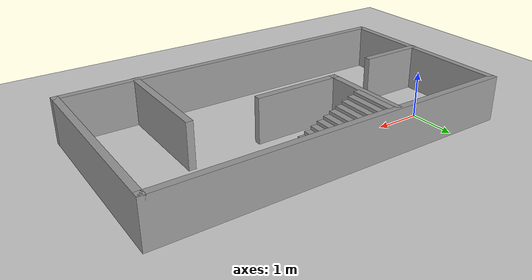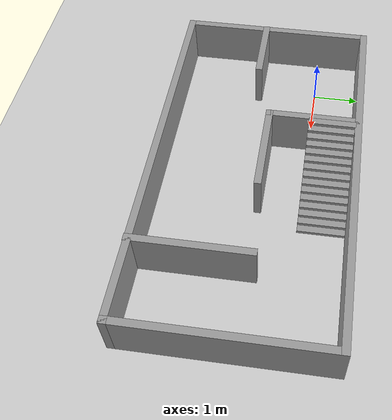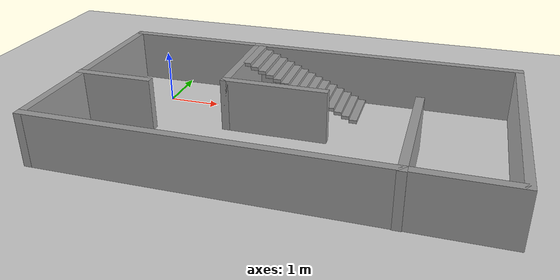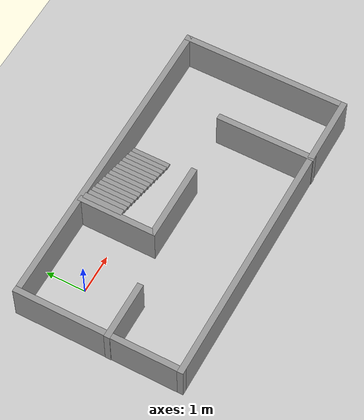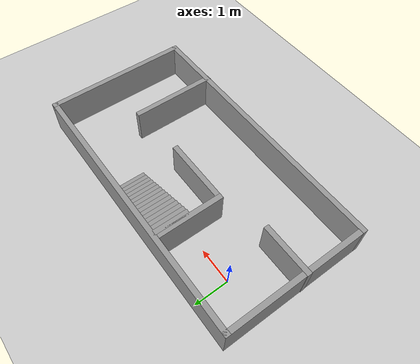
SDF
<sdf version="1.7">
 <world name="default">
  <light name="sun" type="directional">
   <pose>0 0 10 0 -0 0</pose>
   <diffuse>0.8 0.8 0.8 1</diffuse>
   <specular>0.2 0.2 0.2 1</specular>
   <attenuation>
    <range>1000</range>
    <constant>0.9</constant>
    <linear>0.01</linear>
    <quadratic>0.001</quadratic>
   </attenuation>
   <direction>-0.5 0.1 -0.9</direction>
   <spot><inner_angle>0</inner_angle><outer_angle>0</outer_angle><falloff>0</falloff></spot>
  </light>
  <model name="ground_plane">
   <static>1</static>
   <link name="link">
    <collision name="collision">
     <geometry><plane><normal>0 0 1</normal><size>100 100</size></plane></geometry>
     <surface>
      <contact><collide_bitmask>65535</collide_bitmask></contact>
      <friction><ode><mu>100</mu><mu2>50</mu2></ode></friction>
     </surface>
    </collision>
    <visual name="visual">
     <cast_shadows>0</cast_shadows>
     <geometry><plane><normal>0 0 1</normal><size>100 100</size></plane></geometry>
     <material>
      <script><uri>file://media/materials/scripts/gazebo.material</uri><name>Gazebo/Grey</name></script>
     </material>
    </visual>
   </link>
  </model>
  <gravity>0 0 -9.8</gravity>
  <magnetic_field>6e-06 2.3e-05 -4.2e-05</magnetic_field>
  <atmosphere type="adiabatic"/>
  <physics type="ode">
   <max_step_size>0.001</max_step_size>
   <real_time_factor>1</real_time_factor>
   <real_time_update_rate>1000</real_time_update_rate>
  </physics>
  <scene><ambient>0.4 0.4 0.4 1</ambient><background>0.7 0.7 0.7 1</background><shadows>1</shadows></scene>
  <audio><device>default</device></audio>
  <spherical_coordinates>
   <surface_model>EARTH_WGS84</surface_model>
   <latitude_deg>0</latitude_deg>
   <longitude_deg>0</longitude_deg>
   <elevation>0</elevation>
   <heading_deg>0</heading_deg>
  </spherical_coordinates>
  <model name="Untitled">
   <pose>2.78338 -0.25312 0 0 -0 0</pose>
   <link name="Wall_0">
    <collision name="Wall_0_Collision">
     <geometry><box><size>8 0.15 1</size></box></geometry>
     <pose>0 0 0.5 0 -0 0</pose>
    </collision>
    <visual name="Wall_0_Visual">
     <pose>0 0 0.5 0 -0 0</pose>
     <geometry><box><size>8 0.15 1</size></box></geometry>
     <material>
      <script><uri>file://media/materials/scripts/gazebo.material</uri><name>Gazebo/Grey</name></script>
      <ambient>1 1 1 1</ambient>
     </material>
     <meta><layer>0</layer></meta>
    </visual>
    <pose>0.0045 1.254 0 0 -0 0</pose>
   </link>
   <link name="Wall_1">
    <collision name="Wall_1_Collision">
     <geometry><box><size>4.25 0.15 1</size></box></geometry>
     <pose>0 0 0.5 0 -0 0</pose>
    </collision>
    <visual name="Wall_1_Visual">
     <pose>0 0 0.5 0 -0 0</pose>
     <geometry><box><size>4.25 0.15 1</size></box></geometry>
     <material>
      <script><uri>file://media/materials/scripts/gazebo.material</uri><name>Gazebo/Grey</name></script>
      <ambient>1 1 1 1</ambient>
     </material>
     <meta><layer>0</layer></meta>
    </visual>
    <pose>3.9295 -0.796 0 0 -0 -1.5708</pose>
   </link>
   <link name="Wall_10">
    <collision name="Wall_10_Collision">
     <geometry><box><size>1.5 0.15 1</size></box></geometry>
     <pose>0 0 0.5 0 -0 0</pose>
    </collision>
    <visual name="Wall_10_Visual">
     <pose>0 0 0.5 0 -0 0</pose>
     <geometry><box><size>1.5 0.15 1</size></box></geometry>
     <material>
      <script><uri>file://media/materials/scripts/gazebo.material</uri><name>Gazebo/Grey</name></script>
      <ambient>1 1 1 1</ambient>
     </material>
     <meta><layer>0</layer></meta>
    </visual>
    <pose>-3.2545 -1.049 0 0 -0 0</pose>
   </link>
   <link name="Wall_2">
    <collision name="Wall_2_Collision">
     <geometry><box><size>8 0.15 1</size></box></geometry>
     <pose>0 0 0.5 0 -0 0</pose>
    </collision>
    <visual name="Wall_2_Visual">
     <pose>0 0 0.5 0 -0 0</pose>
     <geometry><box><size>8 0.15 1</size></box></geometry>
     <material>
      <script><uri>file://media/materials/scripts/gazebo.material</uri><name>Gazebo/Grey</name></script>
      <ambient>1 1 1 1</ambient>
     </material>
     <meta><layer>0</layer></meta>
    </visual>
    <pose>0.0045 -2.846 0 0 -0 3.14159</pose>
   </link>
   <link name="Wall_3">
    <collision name="Wall_3_Collision">
     <geometry><box><size>4.25 0.15 1</size></box></geometry>
     <pose>0 0 0.5 0 -0 0</pose>
    </collision>
    <visual name="Wall_3_Visual">
     <pose>0 0 0.5 0 -0 0</pose>
     <geometry><box><size>4.25 0.15 1</size></box></geometry>
     <material>
      <script><uri>file://media/materials/scripts/gazebo.material</uri><name>Gazebo/Grey</name></script>
      <ambient>1 1 1 1</ambient>
     </material>
     <meta><layer>0</layer></meta>
    </visual>
    <pose>-3.9205 -0.796 0 0 -0 1.5708</pose>
   </link>
   <link name="Wall_5">
    <collision name="Wall_5_Collision">
     <geometry><box><size>2 0.15 1</size></box></geometry>
     <pose>0 0 0.5 0 -0 0</pose>
    </collision>
    <visual name="Wall_5_Visual">
     <pose>0 0 0.5 0 -0 0</pose>
     <geometry><box><size>2 0.15 1</size></box></geometry>
     <material>
      <script><uri>file://media/materials/scripts/gazebo.material</uri><name>Gazebo/Grey</name></script>
      <ambient>1 1 1 1</ambient>
     </material>
     <meta><layer>0</layer></meta>
    </visual>
    <pose>-1.2135 0.279 0 0 -0 -1.5708</pose>
   </link>
   <link name="Wall_6">
    <collision name="Wall_6_Collision">
     <geometry><box><size>2 0.15 1</size></box></geometry>
     <pose>0 0 0.5 0 -0 0</pose>
    </collision>
    <visual name="Wall_6_Visual">
     <pose>0 0 0.5 0 -0 0</pose>
     <geometry><box><size>2 0.15 1</size></box></geometry>
     <material>
      <script><uri>file://media/materials/scripts/gazebo.material</uri><name>Gazebo/Grey</name></script>
      <ambient>1 1 1 1</ambient>
     </material>
     <meta><layer>0</layer></meta>
    </visual>
    <pose>-0.2885 -0.646 0 0 -0 0</pose>
   </link>
   <link name="Wall_8">
    <collision name="Wall_8_Collision">
     <geometry><box><size>2.5 0.15 1</size></box></geometry>
     <pose>0 0 0.5 0 -0 0</pose>
    </collision>
    <visual name="Wall_8_Visual">
     <pose>0 0 0.5 0 -0 0</pose>
     <geometry><box><size>2.5 0.15 1</size></box></geometry>
     <material>
      <script><uri>file://media/materials/scripts/gazebo.material</uri><name>Gazebo/Grey</name></script>
      <ambient>1 1 1 1</ambient>
     </material>
     <meta><layer>0</layer></meta>
    </visual>
    <pose>2.2655 -1.684 0 0 -0 1.5708</pose>
   </link>
   <static>1</static>
  </model>
  <model name="maailm2">
   <pose>1.93677 0.452092 0 0 -0 0</pose>
   <link name="Stairs_0">
    <visual name="Stairs_0_Visual_0">
     <pose>1.86136 -0 0.033333 0 -0 -1.5708</pose>
     <geometry><box><size>1 0.1508 0.066667</size></box></geometry>
     <material>
      <script><uri>file://media/materials/scripts/gazebo.material</uri><name>Gazebo/Grey</name></script>
      <ambient>1 1 1 1</ambient>
     </material>
     <meta><layer>0</layer></meta>
    </visual>
    <collision name="Stairs_0_Collision_0">
     <geometry><box><size>1 0.1508 0.066667</size></box></geometry>
     <pose>1.86136 -0 0.033333 0 -0 -1.5708</pose>
    </collision>
    <visual name="Stairs_0_Visual_1">
     <pose>1.71056 -0 0.1 0 -0 -1.5708</pose>
     <geometry><box><size>1 0.1508 0.066667</size></box></geometry>
     <material>
      <script><uri>file://media/materials/scripts/gazebo.material</uri><name>Gazebo/Grey</name></script>
      <ambient>1 1 1 1</ambient>
     </material>
     <meta><layer>0</layer></meta>
    </visual>
    <collision name="Stairs_0_Collision_1">
     <geometry><box><size>1 0.1508 0.066667</size></box></geometry>
     <pose>1.71056 -0 0.1 0 -0 -1.5708</pose>
    </collision>
    <visual name="Stairs_0_Visual_2">
     <pose>1.55977 -0 0.166667 0 -0 -1.5708</pose>
     <geometry><box><size>1 0.1508 0.066667</size></box></geometry>
     <material>
      <script><uri>file://media/materials/scripts/gazebo.material</uri><name>Gazebo/Grey</name></script>
      <ambient>1 1 1 1</ambient>
     </material>
     <meta><layer>0</layer></meta>
    </visual>
    <collision name="Stairs_0_Collision_2">
     <geometry><box><size>1 0.1508 0.066667</size></box></geometry>
     <pose>1.55977 -0 0.166667 0 -0 -1.5708</pose>
    </collision>
    <visual name="Stairs_0_Visual_3">
     <pose>1.40897 -0 0.233333 0 -0 -1.5708</pose>
     <geometry><box><size>1 0.1508 0.066667</size></box></geometry>
     <material>
      <script><uri>file://media/materials/scripts/gazebo.material</uri><name>Gazebo/Grey</name></script>
      <ambient>1 1 1 1</ambient>
     </material>
     <meta><layer>0</layer></meta>
    </visual>
    <collision name="Stairs_0_Collision_3">
     <geometry><box><size>1 0.1508 0.066667</size></box></geometry>
     <pose>1.40897 -0 0.233333 0 -0 -1.5708</pose>
    </collision>
    <visual name="Stairs_0_Visual_4">
     <pose>1.25816 -0 0.3 0 -0 -1.5708</pose>
     <geometry><box><size>1 0.1508 0.066667</size></box></geometry>
     <material>
      <script><uri>file://media/materials/scripts/gazebo.material</uri><name>Gazebo/Grey</name></script>
      <ambient>1 1 1 1</ambient>
     </material>
     <meta><layer>0</layer></meta>
    </visual>
    <collision name="Stairs_0_Collision_4">
     <geometry><box><size>1 0.1508 0.066667</size></box></geometry>
     <pose>1.25816 -0 0.3 0 -0 -1.5708</pose>
    </collision>
    <visual name="Stairs_0_Visual_5">
     <pose>1.10736 -0 0.366667 0 -0 -1.5708</pose>
     <geometry><box><size>1 0.1508 0.066667</size></box></geometry>
     <material>
      <script><uri>file://media/materials/scripts/gazebo.material</uri><name>Gazebo/Grey</name></script>
      <ambient>1 1 1 1</ambient>
     </material>
     <meta><layer>0</layer></meta>
    </visual>
    <collision name="Stairs_0_Collision_5">
     <geometry><box><size>1 0.1508 0.066667</size></box></geometry>
     <pose>1.10736 -0 0.366667 0 -0 -1.5708</pose>
    </collision>
    <visual name="Stairs_0_Visual_6">
     <pose>0.956564 -0 0.433333 0 -0 -1.5708</pose>
     <geometry><box><size>1 0.1508 0.066667</size></box></geometry>
     <material>
      <script><uri>file://media/materials/scripts/gazebo.material</uri><name>Gazebo/Grey</name></script>
      <ambient>1 1 1 1</ambient>
     </material>
     <meta><layer>0</layer></meta>
    </visual>
    <collision name="Stairs_0_Collision_6">
     <geometry><box><size>1 0.1508 0.066667</size></box></geometry>
     <pose>0.956564 -0 0.433333 0 -0 -1.5708</pose>
    </collision>
    <visual name="Stairs_0_Visual_7">
     <pose>0.805764 0 0.5 0 -0 -1.5708</pose>
     <geometry><box><size>1 0.1508 0.066667</size></box></geometry>
     <material>
      <script><uri>file://media/materials/scripts/gazebo.material</uri><name>Gazebo/Grey</name></script>
      <ambient>1 1 1 1</ambient>
     </material>
     <meta><layer>0</layer></meta>
    </visual>
    <collision name="Stairs_0_Collision_7">
     <geometry><box><size>1 0.1508 0.066667</size></box></geometry>
     <pose>0.805764 0 0.5 0 -0 -1.5708</pose>
    </collision>
    <visual name="Stairs_0_Visual_8">
     <pose>0.654964 0 0.566667 0 -0 -1.5708</pose>
     <geometry><box><size>1 0.1508 0.066667</size></box></geometry>
     <material>
      <script><uri>file://media/materials/scripts/gazebo.material</uri><name>Gazebo/Grey</name></script>
      <ambient>1 1 1 1</ambient>
     </material>
     <meta><layer>0</layer></meta>
    </visual>
    <collision name="Stairs_0_Collision_8">
     <geometry><box><size>1 0.1508 0.066667</size></box></geometry>
     <pose>0.654964 0 0.566667 0 -0 -1.5708</pose>
    </collision>
    <visual name="Stairs_0_Visual_9">
     <pose>0.504164 0 0.633333 0 -0 -1.5708</pose>
     <geometry><box><size>1 0.1508 0.066667</size></box></geometry>
     <material>
      <script><uri>file://media/materials/scripts/gazebo.material</uri><name>Gazebo/Grey</name></script>
      <ambient>1 1 1 1</ambient>
     </material>
     <meta><layer>0</layer></meta>
    </visual>
    <collision name="Stairs_0_Collision_9">
     <geometry><box><size>1 0.1508 0.066667</size></box></geometry>
     <pose>0.504164 0 0.633333 0 -0 -1.5708</pose>
    </collision>
    <visual name="Stairs_0_Visual_10">
     <pose>0.353364 0 0.7 0 -0 -1.5708</pose>
     <geometry><box><size>1 0.1508 0.066667</size></box></geometry>
     <material>
      <script><uri>file://media/materials/scripts/gazebo.material</uri><name>Gazebo/Grey</name></script>
      <ambient>1 1 1 1</ambient>
     </material>
     <meta><layer>0</layer></meta>
    </visual>
    <collision name="Stairs_0_Collision_10">
     <geometry><box><size>1 0.1508 0.066667</size></box></geometry>
     <pose>0.353364 0 0.7 0 -0 -1.5708</pose>
    </collision>
    <visual name="Stairs_0_Visual_11">
     <pose>0.202564 0 0.766667 0 -0 -1.5708</pose>
     <geometry><box><size>1 0.1508 0.066667</size></box></geometry>
     <material>
      <script><uri>file://media/materials/scripts/gazebo.material</uri><name>Gazebo/Grey</name></script>
      <ambient>1 1 1 1</ambient>
     </material>
     <meta><layer>0</layer></meta>
    </visual>
    <collision name="Stairs_0_Collision_11">
     <geometry><box><size>1 0.1508 0.066667</size></box></geometry>
     <pose>0.202564 0 0.766667 0 -0 -1.5708</pose>
    </collision>
    <visual name="Stairs_0_Visual_12">
     <pose>0.051764 0 0.833333 0 -0 -1.5708</pose>
     <geometry><box><size>1 0.1508 0.066667</size></box></geometry>
     <material>
      <script><uri>file://media/materials/scripts/gazebo.material</uri><name>Gazebo/Grey</name></script>
      <ambient>1 1 1 1</ambient>
     </material>
     <meta><layer>0</layer></meta>
    </visual>
    <collision name="Stairs_0_Collision_12">
     <geometry><box><size>1 0.1508 0.066667</size></box></geometry>
     <pose>0.051764 0 0.833333 0 -0 -1.5708</pose>
    </collision>
    <visual name="Stairs_0_Visual_13">
     <pose>-0.099036 0 0.9 0 -0 -1.5708</pose>
     <geometry><box><size>1 0.1508 0.066667</size></box></geometry>
     <material>
      <script><uri>file://media/materials/scripts/gazebo.material</uri><name>Gazebo/Grey</name></script>
      <ambient>1 1 1 1</ambient>
     </material>
     <meta><layer>0</layer></meta>
    </visual>
    <collision name="Stairs_0_Collision_13">
     <geometry><box><size>1 0.1508 0.066667</size></box></geometry>
     <pose>-0.099036 0 0.9 0 -0 -1.5708</pose>
    </collision>
    <visual name="Stairs_0_Visual_14">
     <pose>-0.249836 0 0.966667 0 -0 -1.5708</pose>
     <geometry><box><size>1 0.1508 0.066667</size></box></geometry>
     <material>
      <script><uri>file://media/materials/scripts/gazebo.material</uri><name>Gazebo/Grey</name></script>
      <ambient>1 1 1 1</ambient>
     </material>
     <meta><layer>0</layer></meta>
    </visual>
    <collision name="Stairs_0_Collision_14">
     <geometry><box><size>1 0.1508 0.066667</size></box></geometry>
     <pose>-0.249836 0 0.966667 0 -0 -1.5708</pose>
    </collision>
   </link>
   <static>1</static>
  </model>
 </world>
</sdf>
